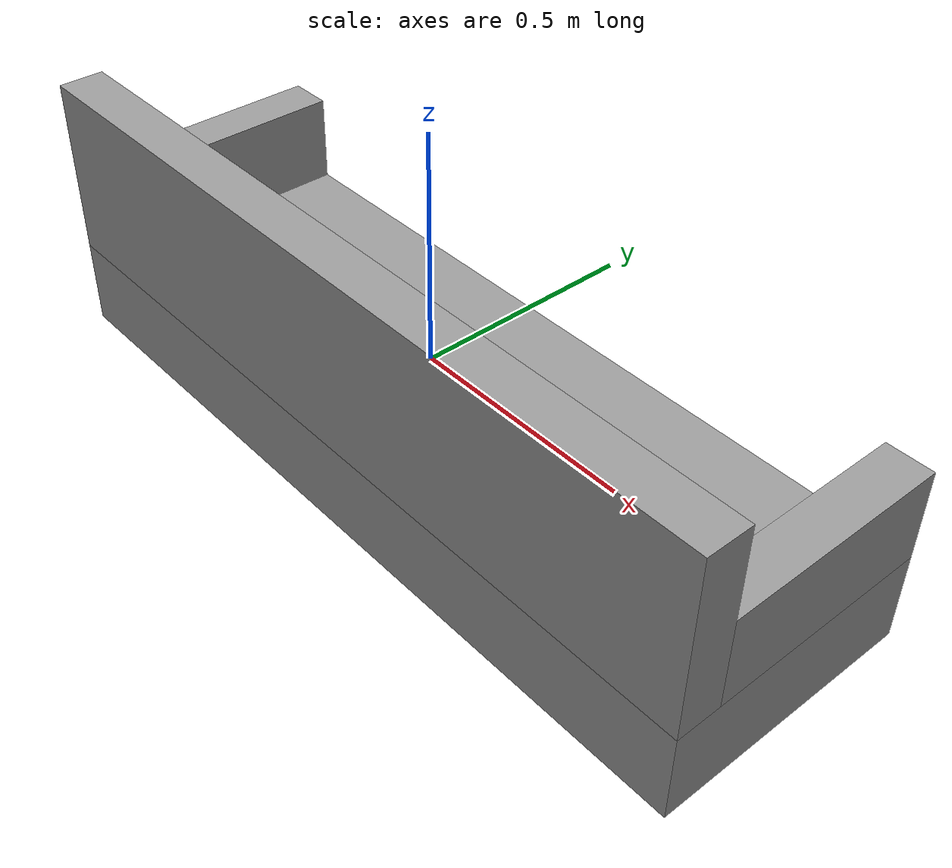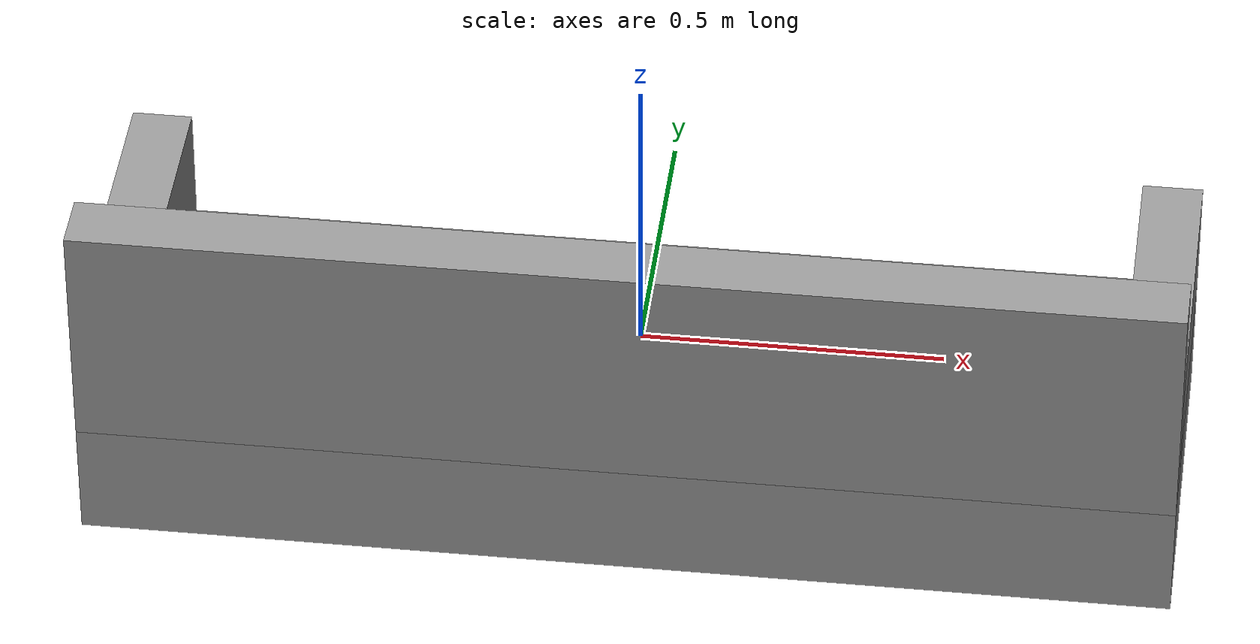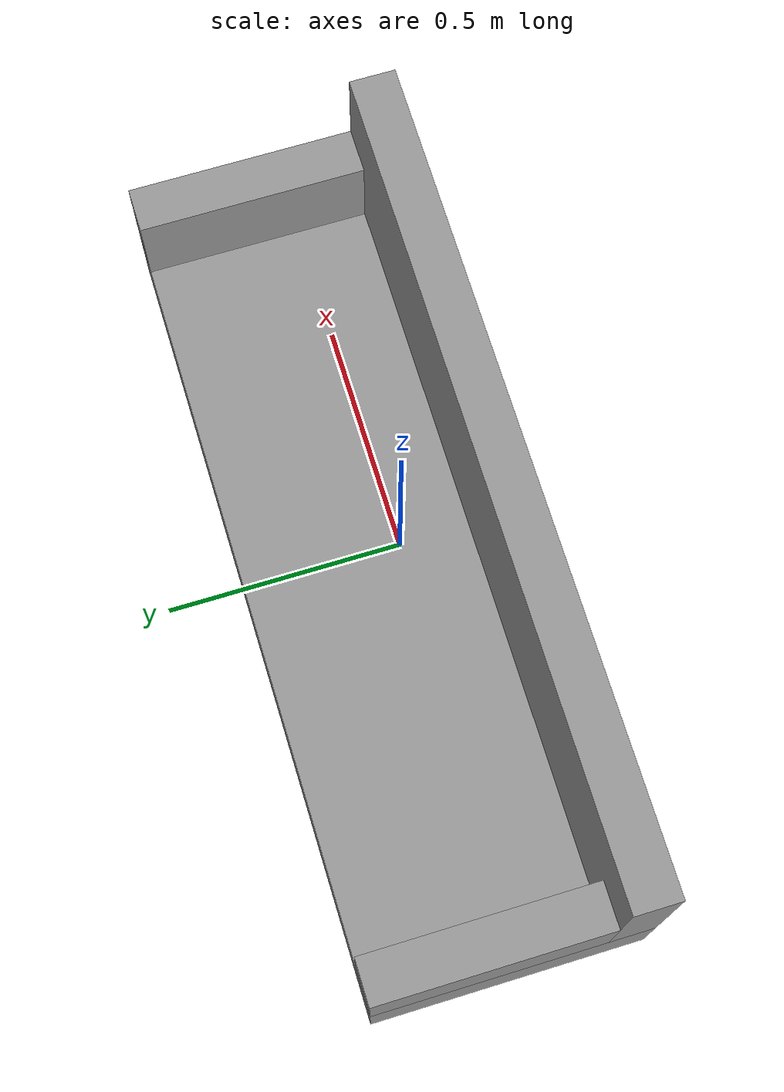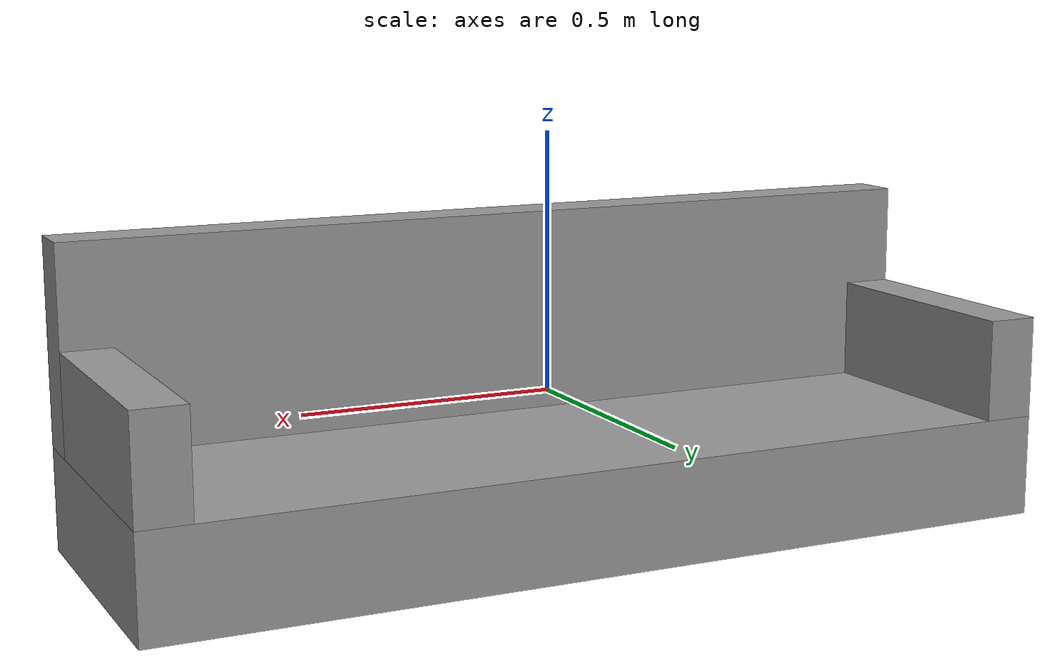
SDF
<?xml version='1.0'?>
<sdf version='1.6'>
  <model name='sofa'>
    <link name='link_0'>
      <inertial>
        <mass>1</mass>
        <inertia>
          <ixx>0.166667</ixx>
          <ixy>0</ixy>
          <ixz>0</ixz>
          <iyy>0.166667</iyy>
          <iyz>0</iyz>
          <izz>0.166667</izz>
        </inertia>
        <pose frame=''>0 0 0 0 -0 0</pose>
      </inertial>
      <pose frame=''>0 0.0375 -0.175 0 -0 0</pose>
      <gravity>1</gravity>
      <self_collide>0</self_collide>
      <kinematic>0</kinematic>
      <enable_wind>0</enable_wind>
      <visual name='visual'>
        <pose frame=''>0 0 0 0 -0 0</pose>
        <geometry>
          <box>
            <size>1.8 0.6 0.2</size>
          </box>
        </geometry>
        <material>
          <lighting>1</lighting>
          <script>
            <uri>file://media/materials/scripts/gazebo.material</uri>
            <name>Gazebo/Grey</name>
          </script>
          <shader type='pixel'>
            <normal_map>__default__</normal_map>
          </shader>
          <ambient>0.3 0.3 0.3 1</ambient>
          <diffuse>0.7 0.7 0.7 1</diffuse>
          <specular>0.01 0.01 0.01 1</specular>
          <emissive>0 0 0 1</emissive>
        </material>
        <transparency>0</transparency>
        <cast_shadows>1</cast_shadows>
      </visual>
      <collision name='collision'>
        <laser_retro>0</laser_retro>
        <max_contacts>10</max_contacts>
        <pose frame=''>0 0 0 0 -0 0</pose>
        <geometry>
          <box>
            <size>1.8 0.6 0.2</size>
          </box>
        </geometry>
        <surface>
          <friction>
            <ode>
              <mu>1</mu>
              <mu2>1</mu2>
              <fdir1>0 0 0</fdir1>
              <slip1>0</slip1>
              <slip2>0</slip2>
            </ode>
            <torsional>
              <coefficient>1</coefficient>
              <patch_radius>0</patch_radius>
              <surface_radius>0</surface_radius>
              <use_patch_radius>1</use_patch_radius>
              <ode>
                <slip>0</slip>
              </ode>
            </torsional>
          </friction>
          <bounce>
            <restitution_coefficient>0</restitution_coefficient>
            <threshold>1e+06</threshold>
          </bounce>
          <contact>
            <collide_without_contact>0</collide_without_contact>
            <collide_without_contact_bitmask>1</collide_without_contact_bitmask>
            <collide_bitmask>1</collide_bitmask>
            <ode>
              <soft_cfm>0</soft_cfm>
              <soft_erp>0.2</soft_erp>
              <kp>1e+13</kp>
              <kd>1</kd>
              <max_vel>0.01</max_vel>
              <min_depth>0</min_depth>
            </ode>
            <bullet>
              <split_impulse>1</split_impulse>
              <split_impulse_penetration_threshold>-0.01</split_impulse_penetration_threshold>
              <soft_cfm>0</soft_cfm>
              <soft_erp>0.2</soft_erp>
              <kp>1e+13</kp>
              <kd>1</kd>
            </bullet>
          </contact>
        </surface>
      </collision>
    </link>
    <link name='link_4'>
      <inertial>
        <mass>1</mass>
        <inertia>
          <ixx>0.166667</ixx>
          <ixy>0</ixy>
          <ixz>0</ixz>
          <iyy>0.166667</iyy>
          <iyz>0</iyz>
          <izz>0.166667</izz>
        </inertia>
        <pose frame=''>0 0 0 0 -0 0</pose>
      </inertial>
      <pose frame=''>0 -0.2125 0.125 0 -0 0</pose>
      <gravity>1</gravity>
      <self_collide>0</self_collide>
      <kinematic>0</kinematic>
      <enable_wind>0</enable_wind>
      <visual name='visual'>
        <pose frame=''>0 0 0 0 -0 0</pose>
        <geometry>
          <box>
            <size>1.8 0.1 0.4</size>
          </box>
        </geometry>
        <material>
          <lighting>1</lighting>
          <script>
            <uri>file://media/materials/scripts/gazebo.material</uri>
            <name>Gazebo/Grey</name>
          </script>
          <shader type='pixel'>
            <normal_map>__default__</normal_map>
          </shader>
          <ambient>0.3 0.3 0.3 1</ambient>
          <diffuse>0.7 0.7 0.7 1</diffuse>
          <specular>0.01 0.01 0.01 1</specular>
          <emissive>0 0 0 1</emissive>
        </material>
        <transparency>0</transparency>
        <cast_shadows>1</cast_shadows>
      </visual>
      <collision name='collision'>
        <laser_retro>0</laser_retro>
        <max_contacts>10</max_contacts>
        <pose frame=''>0 0 0 0 -0 0</pose>
        <geometry>
          <box>
            <size>1.8 0.1 0.4</size>
          </box>
        </geometry>
        <surface>
          <friction>
            <ode>
              <mu>1</mu>
              <mu2>1</mu2>
              <fdir1>0 0 0</fdir1>
              <slip1>0</slip1>
              <slip2>0</slip2>
            </ode>
            <torsional>
              <coefficient>1</coefficient>
              <patch_radius>0</patch_radius>
              <surface_radius>0</surface_radius>
              <use_patch_radius>1</use_patch_radius>
              <ode>
                <slip>0</slip>
              </ode>
            </torsional>
          </friction>
          <bounce>
            <restitution_coefficient>0</restitution_coefficient>
            <threshold>1e+06</threshold>
          </bounce>
          <contact>
            <collide_without_contact>0</collide_without_contact>
            <collide_without_contact_bitmask>1</collide_without_contact_bitmask>
            <collide_bitmask>1</collide_bitmask>
            <ode>
              <soft_cfm>0</soft_cfm>
              <soft_erp>0.2</soft_erp>
              <kp>1e+13</kp>
              <kd>1</kd>
              <max_vel>0.01</max_vel>
              <min_depth>0</min_depth>
            </ode>
            <bullet>
              <split_impulse>1</split_impulse>
              <split_impulse_penetration_threshold>-0.01</split_impulse_penetration_threshold>
              <soft_cfm>0</soft_cfm>
              <soft_erp>0.2</soft_erp>
              <kp>1e+13</kp>
              <kd>1</kd>
            </bullet>
          </contact>
        </surface>
      </collision>
    </link>
    <link name='link_5'>
      <inertial>
        <mass>1</mass>
        <inertia>
          <ixx>0.166667</ixx>
          <ixy>0</ixy>
          <ixz>0</ixz>
          <iyy>0.166667</iyy>
          <iyz>0</iyz>
          <izz>0.166667</izz>
        </inertia>
        <pose frame=''>0 0 0 0 -0 0</pose>
      </inertial>
      <pose frame=''>-0.85 0.0875 0.025 0 -0 0</pose>
      <gravity>1</gravity>
      <self_collide>0</self_collide>
      <kinematic>0</kinematic>
      <enable_wind>0</enable_wind>
      <visual name='visual'>
        <pose frame=''>0 0 0 0 -0 0</pose>
        <geometry>
          <box>
            <size>0.1 0.5 0.2</size>
          </box>
        </geometry>
        <material>
          <lighting>1</lighting>
          <script>
            <uri>file://media/materials/scripts/gazebo.material</uri>
            <name>Gazebo/Grey</name>
          </script>
          <shader type='pixel'>
            <normal_map>__default__</normal_map>
          </shader>
          <ambient>0.3 0.3 0.3 1</ambient>
          <diffuse>0.7 0.7 0.7 1</diffuse>
          <specular>0.01 0.01 0.01 1</specular>
          <emissive>0 0 0 1</emissive>
        </material>
        <transparency>0</transparency>
        <cast_shadows>1</cast_shadows>
      </visual>
      <collision name='collision'>
        <laser_retro>0</laser_retro>
        <max_contacts>10</max_contacts>
        <pose frame=''>0 0 0 0 -0 0</pose>
        <geometry>
          <box>
            <size>0.1 0.5 0.2</size>
          </box>
        </geometry>
        <surface>
          <friction>
            <ode>
              <mu>1</mu>
              <mu2>1</mu2>
              <fdir1>0 0 0</fdir1>
              <slip1>0</slip1>
              <slip2>0</slip2>
            </ode>
            <torsional>
              <coefficient>1</coefficient>
              <patch_radius>0</patch_radius>
              <surface_radius>0</surface_radius>
              <use_patch_radius>1</use_patch_radius>
              <ode>
                <slip>0</slip>
              </ode>
            </torsional>
          </friction>
          <bounce>
            <restitution_coefficient>0</restitution_coefficient>
            <threshold>1e+06</threshold>
          </bounce>
          <contact>
            <collide_without_contact>0</collide_without_contact>
            <collide_without_contact_bitmask>1</collide_without_contact_bitmask>
            <collide_bitmask>1</collide_bitmask>
            <ode>
              <soft_cfm>0</soft_cfm>
              <soft_erp>0.2</soft_erp>
              <kp>1e+13</kp>
              <kd>1</kd>
              <max_vel>0.01</max_vel>
              <min_depth>0</min_depth>
            </ode>
            <bullet>
              <split_impulse>1</split_impulse>
              <split_impulse_penetration_threshold>-0.01</split_impulse_penetration_threshold>
              <soft_cfm>0</soft_cfm>
              <soft_erp>0.2</soft_erp>
              <kp>1e+13</kp>
              <kd>1</kd>
            </bullet>
          </contact>
        </surface>
      </collision>
    </link>
    <link name='link_5_clone'>
      <inertial>
        <mass>1</mass>
        <inertia>
          <ixx>0.166667</ixx>
          <ixy>0</ixy>
          <ixz>0</ixz>
          <iyy>0.166667</iyy>
          <iyz>0</iyz>
          <izz>0.166667</izz>
        </inertia>
        <pose frame=''>0 0 0 0 -0 0</pose>
      </inertial>
      <pose frame=''>0.85 0.0875 0.025 0 -0 0</pose>
      <gravity>1</gravity>
      <self_collide>0</self_collide>
      <kinematic>0</kinematic>
      <enable_wind>0</enable_wind>
      <visual name='visual'>
        <pose frame=''>0 0 0 0 -0 0</pose>
        <geometry>
          <box>
            <size>0.1 0.5 0.2</size>
          </box>
        </geometry>
        <material>
          <lighting>1</lighting>
          <script>
            <uri>file://media/materials/scripts/gazebo.material</uri>
            <name>Gazebo/Grey</name>
          </script>
          <shader type='pixel'>
            <normal_map>__default__</normal_map>
          </shader>
          <ambient>0.3 0.3 0.3 1</ambient>
          <diffuse>0.7 0.7 0.7 1</diffuse>
          <specular>0.01 0.01 0.01 1</specular>
          <emissive>0 0 0 1</emissive>
        </material>
        <transparency>0</transparency>
        <cast_shadows>1</cast_shadows>
      </visual>
      <collision name='collision'>
        <laser_retro>0</laser_retro>
        <max_contacts>10</max_contacts>
        <pose frame=''>0 0 0 0 -0 0</pose>
        <geometry>
          <box>
            <size>0.1 0.5 0.2</size>
          </box>
        </geometry>
        <surface>
          <friction>
            <ode>
              <mu>1</mu>
              <mu2>1</mu2>
              <fdir1>0 0 0</fdir1>
              <slip1>0</slip1>
              <slip2>0</slip2>
            </ode>
            <torsional>
              <coefficient>1</coefficient>
              <patch_radius>0</patch_radius>
              <surface_radius>0</surface_radius>
              <use_patch_radius>1</use_patch_radius>
              <ode>
                <slip>0</slip>
              </ode>
            </torsional>
          </friction>
          <bounce>
            <restitution_coefficient>0</restitution_coefficient>
            <threshold>1e+06</threshold>
          </bounce>
          <contact>
            <collide_without_contact>0</collide_without_contact>
            <collide_without_contact_bitmask>1</collide_without_contact_bitmask>
            <collide_bitmask>1</collide_bitmask>
            <ode>
              <soft_cfm>0</soft_cfm>
              <soft_erp>0.2</soft_erp>
              <kp>1e+13</kp>
              <kd>1</kd>
              <max_vel>0.01</max_vel>
              <min_depth>0</min_depth>
            </ode>
            <bullet>
              <split_impulse>1</split_impulse>
              <split_impulse_penetration_threshold>-0.01</split_impulse_penetration_threshold>
              <soft_cfm>0</soft_cfm>
              <soft_erp>0.2</soft_erp>
              <kp>1e+13</kp>
              <kd>1</kd>
            </bullet>
          </contact>
        </surface>
      </collision>
    </link>
    <joint name='link_0_JOINT_0' type='fixed'>
      <parent>link_0</parent>
      <child>link_4</child>
      <pose frame=''>0 0 0 0 -0 0</pose>
      <physics>
        <ode>
          <limit>
            <cfm>0</cfm>
            <erp>0.2</erp>
          </limit>
          <suspension>
            <cfm>0</cfm>
            <erp>0.2</erp>
          </suspension>
        </ode>
      </physics>
    </joint>
    <joint name='link_0_JOINT_1' type='fixed'>
      <parent>link_0</parent>
      <child>link_5_clone</child>
      <pose frame=''>0 0 0 0 -0 0</pose>
      <physics>
        <ode>
          <limit>
            <cfm>0</cfm>
            <erp>0.2</erp>
          </limit>
          <suspension>
            <cfm>0</cfm>
            <erp>0.2</erp>
          </suspension>
        </ode>
      </physics>
    </joint>
    <joint name='link_0_JOINT_2' type='fixed'>
      <parent>link_0</parent>
      <child>link_5</child>
      <pose frame=''>0 0 0 0 -0 0</pose>
      <physics>
        <ode>
          <limit>
            <cfm>0</cfm>
            <erp>0.2</erp>
          </limit>
          <suspension>
            <cfm>0</cfm>
            <erp>0.2</erp>
          </suspension>
        </ode>
      </physics>
    </joint>
    <static>0</static>
    <allow_auto_disable>1</allow_auto_disable>
  </model>
</sdf>
